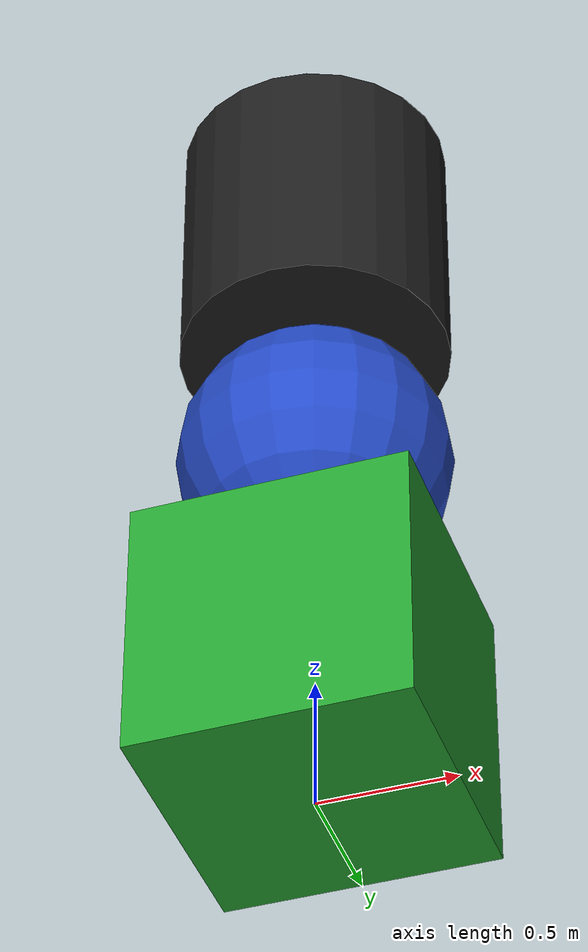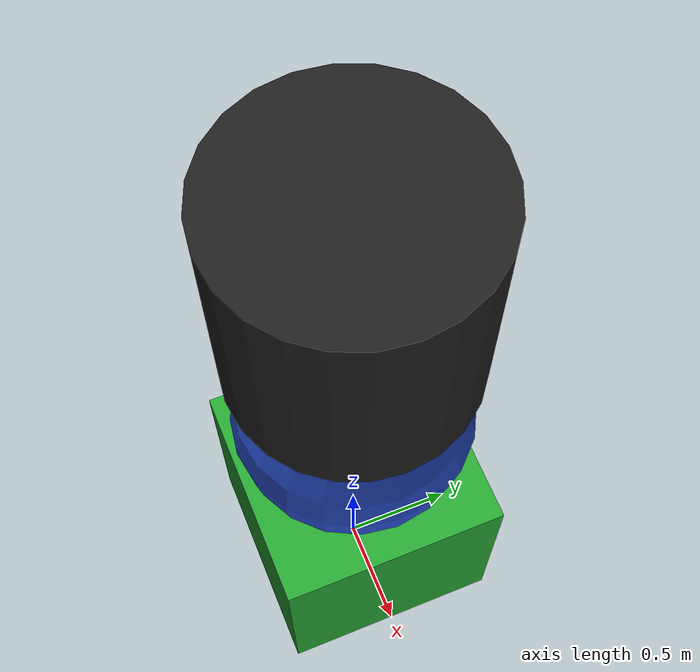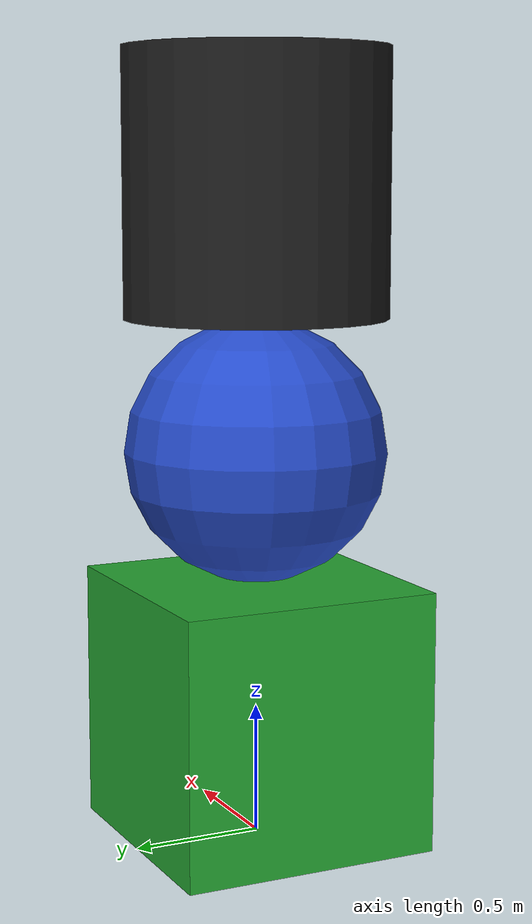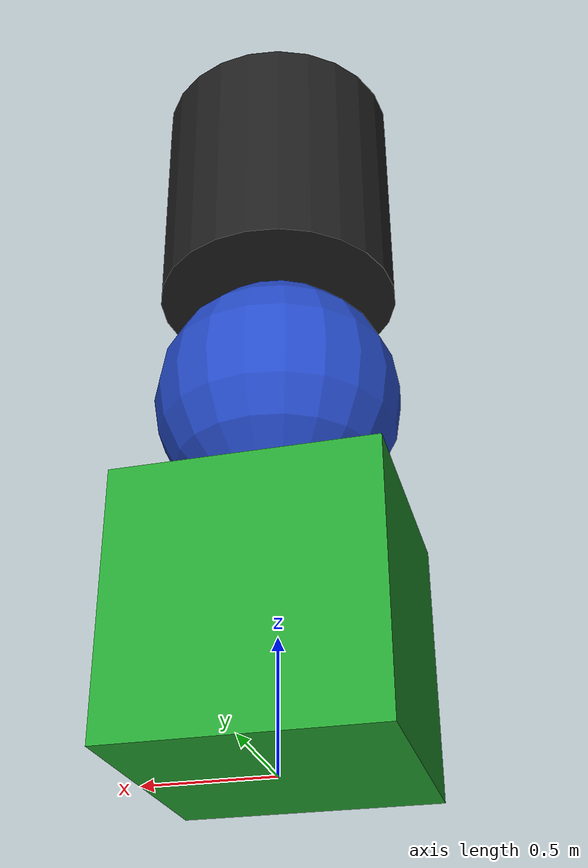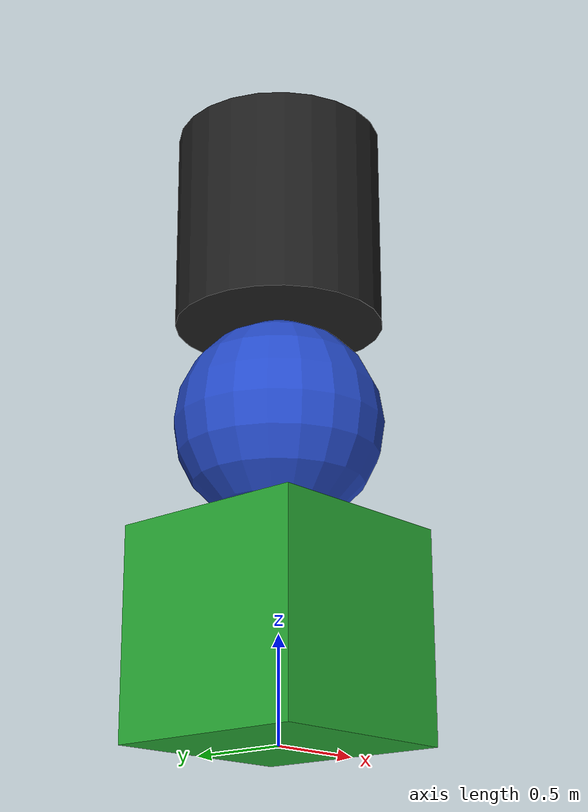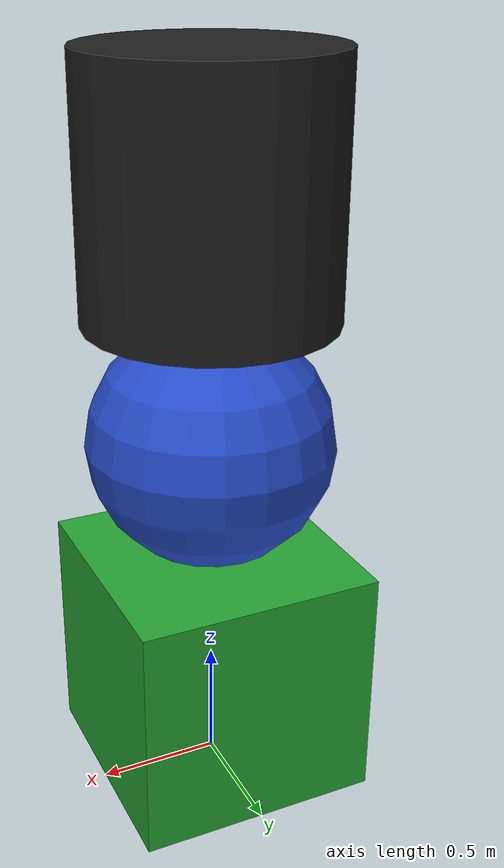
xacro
<?xml version="1.0"?>
<robot name="basic_shapes" xmlns:xacro="http://wiki.ros.org/xacro">

    <!-- basic shapes -->
    <xacro:include filename="$(find urdf_basic_shapes)/urdf/basic_shapes.urdf.xacro"/>

    <xacro:cube name="base_link" x="1" y="1" z="1" ori="0 0 0.5" rpy="0 0 0" rgb="green" m="1"/>

    <xacro:ball name="ball1" r="0.5" ori="0 0 01.5" rpy="0 0 0" rgb="blue" m="1"/>
    <joint name="joint_ball1" type="fixed">
        <parent link="base_link"/>
        <child link="ball1"/>
    </joint>

    <xacro:cylinder_shape name="cylinder1" r="0.5" h="1" ori="0 0 0" rpy="0 0 0" rgb="black" m="1"/>
    <joint name="joint_cylinder1" type="fixed">
        <parent link="base_link"/>
        <child link="cylinder1"/>
        <origin xyz="0 0 2.5" rpy="0 0 3.1416"/>
    </joint>

</robot>

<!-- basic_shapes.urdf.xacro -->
<robot name="basic_shapes" xmlns:xacro="http://wiki.ros.org/xacro">
  <!-- basic inertia -->
  <xacro:include filename="$(find urdf_basic_shapes)/urdf/inertia.urdf.xacro"/>
  <!-- basic material -->
  <xacro:include filename="$(find urdf_basic_shapes)/urdf/material.urdf.xacro"/>

  <xacro:macro name="cube" params="name x y z ori rpy rgb m">
    <link name="${name}">
        <visual>
          <origin xyz="${ori}" rpy="${rpy}"/>
          <geometry>
              <box size="${x} ${y} ${z}"/>
          </geometry>
          <material name="${rgb}"/>
        </visual>
        <collision>
        <origin xyz="${ori}" rpy="${rpy}" />
        <geometry>
            <box size="${x} ${y} ${z}" />
        </geometry>
        </collision>
        <xacro:solid_cuboid_inertia m="${m}" h="${y}" d="${z}" w="${x}"/>
    </link>
  </xacro:macro>

  <xacro:macro name="ball" params="name r ori rpy rgb m">
    <link name="${name}">
        <visual>
          <origin xyz="${ori}" rpy="${rpy}"/>
          <geometry>
              <sphere radius="${r}"/>
          </geometry>
          <material name="${rgb}"/>
        </visual>
        <collision>
        <origin xyz="${ori}" rpy="${rpy}" />
        <geometry>
            <sphere radius="${r}" />
        </geometry>
        </collision>
        <xacro:solid_sphere_inertia m="${m}" r="${r}"/>
    </link>
  </xacro:macro>

  <xacro:macro name="cylinder_shape" params="name r h ori rpy rgb m">
    <link name="${name}">
        <visual>
          <origin xyz="${ori}" rpy="${rpy}"/>
          <geometry>
              <cylinder radius="${r}" length="${h}"/>
          </geometry>
          <material name="${rgb}"/>
        </visual>
        <collision>
        <origin xyz="${ori}" rpy="${rpy}" />
        <geometry>
            <cylinder radius="${r}" length="${h}" />
        </geometry>
        </collision>
        <xacro:solid_cylinder_inertia m="${m}" r="${r}" h="${h}"/>
    </link>
  </xacro:macro>

</robot>

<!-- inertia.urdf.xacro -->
<robot xmlns:xacro="http://wiki.ros.org/xacro">
  <!-- source en.wikipedia.org/wiki/List_of_moments_of_inertia-->

  <!-- TODO Solid sphere of radius r and mass m-->
  <xacro:macro name="solid_sphere_inertia" params="m r">
  <inertial>
      <mass value="${m}" />
    <inertia  ixx="${(2*r*r*m)/5}" ixy = "0" ixz = "0"
              iyy="${(2*r*r*m)/5}" iyz = "0"
              izz="${(2*r*r*m)/5}"
     />
     </inertial>
  </xacro:macro>

  <!-- TODO Hollow sphere of radius r and mass m-->
  <xacro:macro name="hollow_sphere_inertia" params="m r">
  <inertial>
      <mass value="${m}" />
    <inertia  ixx="${(2*r*r*m)/3}" ixy = "0" ixz = "0"
              iyy="${(2*r*r*m)/3}" iyz = "0"
              izz="${(2*r*r*m)/3}"
     />
     </inertial>
  </xacro:macro>

  <!-- TODO Solid ellipsoid of semi-axes a, b, c and mass m-->
  <xacro:macro name="ellipsoid_semi_axes_inertia" params="a b c m r">
  <inertial>
      <mass value="${m}" />
    <inertia  ixx="${(m*(b*b+c*c))/5}" ixy = "0" ixz = "0"
              iyy="${(m*(a*a+c*c))/5}" iyz = "0"
              izz="${(m*(a*a+b*b))/5}"
     />
     </inertial>
  </xacro:macro>

  <!-- TODO Right circular cone with radius r, height h and mass m, about the apex -->
  <xacro:macro name="right_circular_cone_inertia" params="m r h">
  <inertial>
      <mass value="${m}" />
    <inertia  ixx="${((3*m*(h*h))/5)+((3*m*(r*r))/20)}" ixy = "0" ixz = "0"
              iyy="${((3*m*(h*h))/5)+((3*m*(r*r))/20)}" iyz = "0"
              izz="${(3*m*(r*r))/10}"
     />
     </inertial>
  </xacro:macro>

  <!-- TODO Solid cuboid of width w, height h, depth d, and mass m -->
  <!-- yes, axis in solid_cuboid_inertia are changed, w relates to X axis, d to Z axis, and h to Y axis -->
  <!-- Keep this comment -->
  <xacro:macro name="solid_cuboid_inertia" params="m h d w">
    <inertial>
      <mass value="${m}" />
        <inertia  ixx="${(m*(h*h+d*d))/12}" ixy = "0" ixz = "0"
                iyy="${(m*(w*w+d*d))/12}" iyz = "0"
                izz="${(m*(w*w+h*h))/12}"
        />
    </inertial>
  </xacro:macro>

  <!-- TODO Solid cylinder of radius r, height h and mass m -->
  <xacro:macro name="solid_cylinder_inertia" params="m r h">
  <inertial>
      <mass value="${m}" />
    <inertia  ixx="${m*(3*r*r+h*h)/12}" ixy = "0" ixz = "0"
              iyy="${m*(3*r*r+h*h)/12}" iyz = "0"
              izz="${m*r*r/2}"
     />
     </inertial>
  </xacro:macro>

    <!-- TODO Thick-walled cylindrical tube with open ends, of inner radius r1, outer radius r2, length h and mass m -->
    <xacro:macro name="thick_walled_cylinder_inertia" params="m r1 r2 h">
    <inertial>
      <mass value="${m}" />
    <inertia  ixx="${m*((3*(r1*r1+r2*r2))+(h*h))/12}" ixy = "0" ixz = "0"
              iyy="${m*((3*(r1*r1+r2*r2))+(h*h))/12}" iyz = "0"
              izz="${m*(r1*r1+r2*r2)/2}"
     />
     </inertial>
  </xacro:macro>

</robot>

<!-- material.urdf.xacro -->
<robot xmlns:xacro="http://wiki.ros.org/xacro">

  <material name="Red">
    <color rgba="1 0 0 1"/>
  </material>
  <material name="Green">
    <color rgba="0 1 0 1"/>
  </material>
  <material name="Blue">
    <color rgba="0 0 0.8 1"/>
  </material>
  <material name="Black">
    <color rgba="0 0 0 1"/>
  </material>
  <material name="White">
    <color rgba="1 1 1 1"/>
  </material>
  <material name="Gray">
    <color rgba="0.8 0.8 0.8 1"/>
  </material>
  <material name="Yellow">
    <color rgba="1 1 0 1"/>
  </material>
  <material name="Orange">
    <color rgba="1 0.5 0 1"/>
  </material>
  <material name="Brown">
    <color rgba="0.6 0.4 0.2 1"/>
  </material>
  <material name="Purple">
    <color rgba="0.5 0 0.5 1"/>
  </material>
  <material name="Cyan">
    <color rgba="0 1 1 1"/>
  </material>

</robot>
